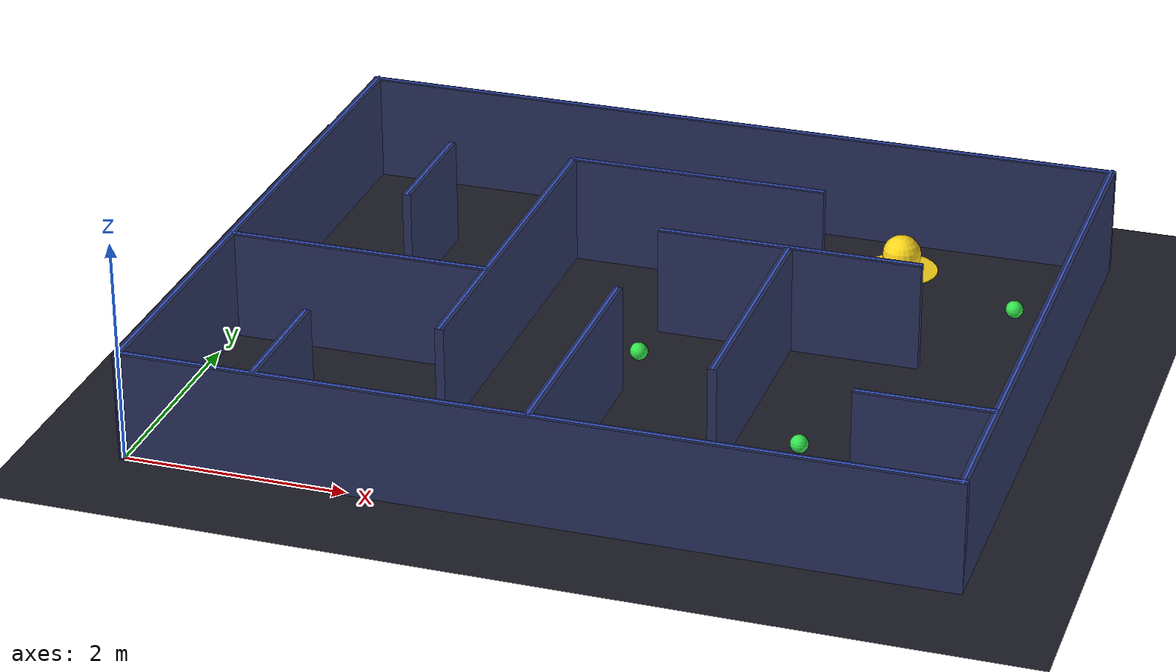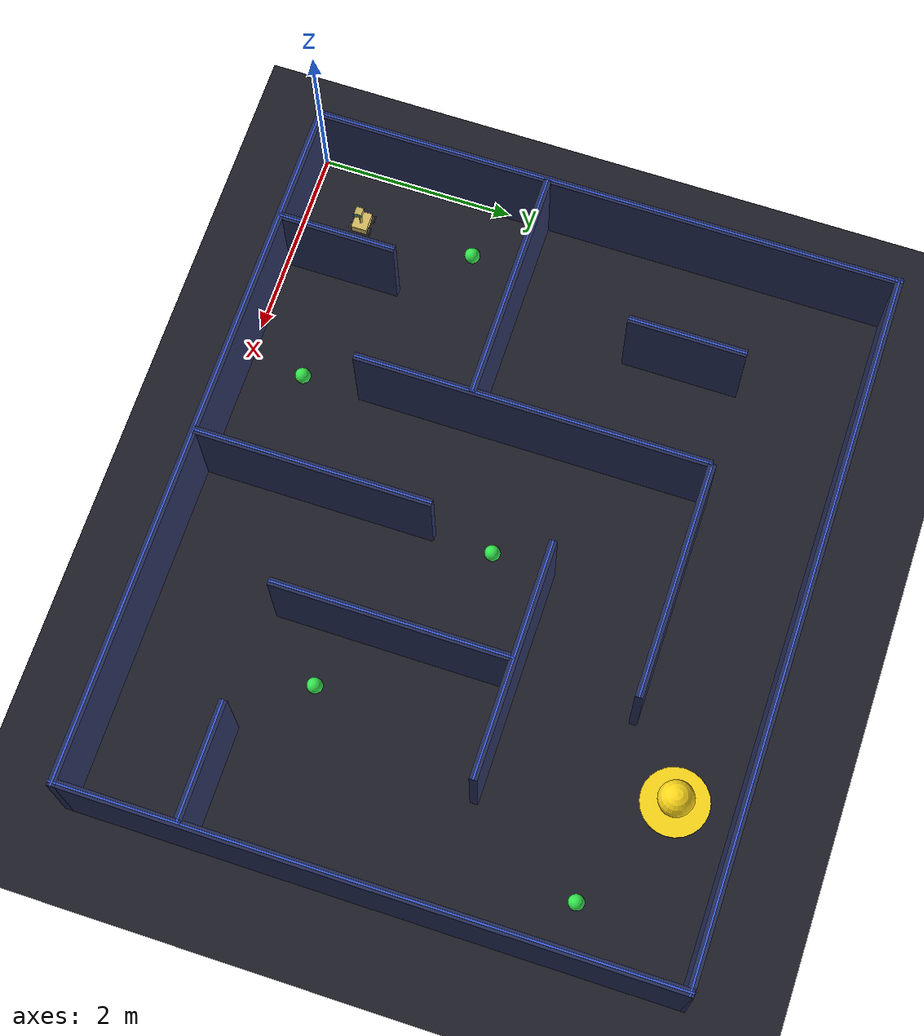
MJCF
<?xml version="1.0" encoding="utf-8"?>
<mujoco model="CARL Genesis">

  <option timestep="0.00417" gravity="0 0 -9.81" iterations="50" solver="Newton"
          integrator="RK4"/>

  <compiler angle="radian" coordinate="local" inertiafromgeom="true"/>

  <default>
    <geom contype="1" conaffinity="1" condim="3"
          friction="0.85 0.005 0.0001"
          solimp="0.99 0.999 0.001" solref="0.02 1"/>
    <joint damping="0.05" frictionloss="0.002"/>
  </default>

  <asset>
    <!-- Materials -->
    <material name="floor_mat"   rgba="0.12 0.12 0.16 1.0" reflectance="0.15"/>
    <material name="wall_mat"    rgba="0.15 0.18 0.35 1.0" specular="0.3"/>
    <material name="wall_glow"   rgba="0.30 0.45 1.00 0.8" emission="0.6"/>
    <material name="chassis_mat" rgba="0.85 0.75 0.40 1.0" specular="0.5"/>
    <material name="wheel_mat"   rgba="0.20 0.20 0.20 1.0" specular="0.1"/>
    <material name="neck_mat"    rgba="0.70 0.65 0.35 1.0"/>
    <material name="head_mat"    rgba="0.80 0.72 0.38 1.0" specular="0.4"/>
    <material name="eye_mat"     rgba="0.20 0.85 0.95 1.0" emission="0.8"/>
    <material name="food_mat"    rgba="0.20 0.90 0.30 1.0" emission="0.5"/>
    <material name="goal_mat"    rgba="1.00 0.85 0.10 1.0" emission="0.7"/>
    <material name="hub_mat"     rgba="0.70 0.70 0.70 1.0" specular="0.8"/>

    <!-- Sky -->
    <texture name="sky" type="skybox" builtin="gradient"
             rgb1="0.05 0.05 0.12" rgb2="0.02 0.02 0.06" width="512" height="512"/>
  </asset>

  <visual>
    <headlight ambient="0.35 0.35 0.45" diffuse="0.6 0.6 0.7" specular="0.1 0.1 0.1"/>
    <rgba haze="0.02 0.02 0.04 1"/>
    <quality shadowsize="2048"/>
  </visual>

  <worldbody>
    <!-- Floor -->
    <geom name="floor" type="plane" size="15 15 0.1"
          pos="3.6 3.0 0" material="floor_mat" condim="3"/>

    <!-- Ambient light -->
    <light name="sun" pos="3.6 3.0 8.0" dir="0 0 -1"
           diffuse="0.5 0.5 0.6" specular="0.2 0.2 0.2" castshadow="true"/>

    <!-- MAZE WALLS (same verified layout as Phase 18)                     -->

    <!-- Outer boundary -->
    <geom name="w_s" type="box" size="3.64 0.04 0.50" pos="3.6  0.0  0.50" material="wall_mat"/>
    <geom name="w_n" type="box" size="3.64 0.04 0.50" pos="3.6  6.0  0.50" material="wall_mat"/>
    <geom name="w_w" type="box" size="0.04 3.04 0.50" pos="0.0  3.0  0.50" material="wall_mat"/>
    <geom name="w_e" type="box" size="0.04 3.04 0.50" pos="7.2  3.0  0.50" material="wall_mat"/>

    <!-- Glow caps on outer walls -->
    <geom name="wg_s" type="box" size="3.64 0.01 0.004" pos="3.6  0.0  1.004" material="wall_glow" contype="0" conaffinity="0"/>
    <geom name="wg_n" type="box" size="3.64 0.01 0.004" pos="3.6  6.0  1.004" material="wall_glow" contype="0" conaffinity="0"/>
    <geom name="wg_w" type="box" size="0.01 3.04 0.004" pos="0.0  3.0  1.004" material="wall_glow" contype="0" conaffinity="0"/>
    <geom name="wg_e" type="box" size="0.01 3.04 0.004" pos="7.2  3.0  1.004" material="wall_glow" contype="0" conaffinity="0"/>

    <!-- Internal walls -->
    <geom name="wi0" type="box" size="0.04 0.60 0.50" pos="1.2 0.6  0.50" material="wall_mat"/>
    <geom name="wi1" type="box" size="1.20 0.04 0.50" pos="1.2 2.4  0.50" material="wall_mat"/>
    <geom name="wi2" type="box" size="0.04 0.60 0.50" pos="1.2 4.2  0.50" material="wall_mat"/>
    <geom name="wi3" type="box" size="0.04 1.80 0.50" pos="2.4 3.0  0.50" material="wall_mat"/>
    <geom name="wi4" type="box" size="0.04 1.20 0.50" pos="3.6 1.2  0.50" material="wall_mat"/>
    <geom name="wi5" type="box" size="1.20 0.04 0.50" pos="3.6 4.8  0.50" material="wall_mat"/>
    <geom name="wi6" type="box" size="0.04 1.20 0.50" pos="4.8 2.4  0.50" material="wall_mat"/>
    <geom name="wi7" type="box" size="1.20 0.04 0.50" pos="4.8 3.6  0.50" material="wall_mat"/>
    <geom name="wi8" type="box" size="0.60 0.04 0.50" pos="6.6 1.2  0.50" material="wall_mat"/>

    <!-- Internal glow caps -->
    <geom name="wgi0" type="box" size="0.01 0.60 0.004" pos="1.2 0.6  1.004" material="wall_glow" contype="0" conaffinity="0"/>
    <geom name="wgi1" type="box" size="1.20 0.01 0.004" pos="1.2 2.4  1.004" material="wall_glow" contype="0" conaffinity="0"/>
    <geom name="wgi2" type="box" size="0.01 0.60 0.004" pos="1.2 4.2  1.004" material="wall_glow" contype="0" conaffinity="0"/>
    <geom name="wgi3" type="box" size="0.01 1.80 0.004" pos="2.4 3.0  1.004" material="wall_glow" contype="0" conaffinity="0"/>
    <geom name="wgi4" type="box" size="0.01 1.20 0.004" pos="3.6 1.2  1.004" material="wall_glow" contype="0" conaffinity="0"/>
    <geom name="wgi5" type="box" size="1.20 0.01 0.004" pos="3.6 4.8  1.004" material="wall_glow" contype="0" conaffinity="0"/>
    <geom name="wgi6" type="box" size="0.01 1.20 0.004" pos="4.8 2.4  1.004" material="wall_glow" contype="0" conaffinity="0"/>
    <geom name="wgi7" type="box" size="1.20 0.01 0.004" pos="4.8 3.6  1.004" material="wall_glow" contype="0" conaffinity="0"/>
    <geom name="wgi8" type="box" size="0.60 0.01 0.004" pos="6.6 1.2  1.004" material="wall_glow" contype="0" conaffinity="0"/>

    <!-- GOAL BEACON                                                        -->
    <geom name="goal_sphere" type="sphere"   size="0.18"      pos="5.4 5.4 0.18"
          material="goal_mat" contype="0" conaffinity="0"/>
    <geom name="goal_ring"   type="cylinder" size="0.34 0.005" pos="5.4 5.4 0.02"
          material="goal_mat" contype="0" conaffinity="0"/>
    <light name="goal_light" pos="5.4 5.4 1.5" dir="0 0 -1"
           diffuse="0.8 0.7 0.1" specular="0.3 0.3 0.1" castshadow="false"/>

    <!-- FOOD PELLETS — 5 scattered sources of energy                      -->
    <!-- Positions chosen to be in different maze regions                  -->
    <geom name="food_0" type="sphere" size="0.08" pos="0.6 1.8 0.08"
          material="food_mat" contype="0" conaffinity="0"/>
    <geom name="food_1" type="sphere" size="0.08" pos="2.4 0.6 0.08"
          material="food_mat" contype="0" conaffinity="0"/>
    <geom name="food_2" type="sphere" size="0.08" pos="3.6 3.0 0.08"
          material="food_mat" contype="0" conaffinity="0"/>
    <geom name="food_3" type="sphere" size="0.08" pos="5.4 1.8 0.08"
          material="food_mat" contype="0" conaffinity="0"/>
    <geom name="food_4" type="sphere" size="0.08" pos="6.6 4.8 0.08"
          material="food_mat" contype="0" conaffinity="0"/>

    <!-- CARL-A — The first living vessel                                   -->
    <!-- Wall-E style: wide low stable base, expressive neck and head      -->
    <body name="base_A" pos="0.60 0.60 0.10">
      <freejoint name="fj_A"/>

      <!-- Main chassis: wide, low, stable. Center of mass near the ground. -->
      <geom name="chassis_A" type="box" size="0.10 0.08 0.045"
            material="chassis_mat" mass="1.2"
            friction="0.15 0.005 0.0001"/>
      <inertial pos="0 0 0" mass="1.2" fullinertia="0.003 0.004 0.005 0 0 0"/>

      <!-- Left Front Wheel -->
      <body name="lfw_A" pos=" 0.07  0.10  -0.02">
        <joint name="lfw_A_j" type="hinge" axis="0 1 0" damping="0.015" frictionloss="0.003"/>
        <geom name="lfw_A_g" type="cylinder" size="0.04 0.012"
              euler="1.5708 0 0" material="wheel_mat" mass="0.15"
              friction="1.5 0.005 0.0001"/>
      </body>

      <!-- Left Rear Wheel -->
      <body name="lrw_A" pos="-0.07  0.10  -0.02">
        <joint name="lrw_A_j" type="hinge" axis="0 1 0" damping="0.015" frictionloss="0.003"/>
        <geom name="lrw_A_g" type="cylinder" size="0.04 0.012"
              euler="1.5708 0 0" material="wheel_mat" mass="0.15"
              friction="1.5 0.005 0.0001"/>
      </body>

      <!-- Right Front Wheel -->
      <body name="rfw_A" pos=" 0.07 -0.10  -0.02">
        <joint name="rfw_A_j" type="hinge" axis="0 1 0" damping="0.015" frictionloss="0.003"/>
        <geom name="rfw_A_g" type="cylinder" size="0.04 0.012"
              euler="1.5708 0 0" material="wheel_mat" mass="0.15"
              friction="1.5 0.005 0.0001"/>
      </body>

      <!-- Right Rear Wheel -->
      <body name="rrw_A" pos="-0.07 -0.10  -0.02">
        <joint name="rrw_A_j" type="hinge" axis="0 1 0" damping="0.015" frictionloss="0.003"/>
        <geom name="rrw_A_g" type="cylinder" size="0.04 0.012"
              euler="1.5708 0 0" material="wheel_mat" mass="0.15"
              friction="1.5 0.005 0.0001"/>
      </body>

      <!-- Neck column: prismatic (height) + hinge (pan) -->
      <!-- This translates internal emotional state into visible posture -->
      <body name="neck_col_A" pos="0.02 0 0.045">
        <!-- Prismatic: neck rises and falls with curiosity, fear, grief -->
        <joint name="neck_lift_A" type="slide" axis="0 0 1"
               range="0.0 0.28" damping="15.0" stiffness="30.0" springref="0.12"/>
        <geom name="neck_tube_A" type="cylinder" size="0.014 0.10"
              pos="0 0 0.10" material="neck_mat" mass="0.08"
              contype="0" conaffinity="0"/>

        <!-- Head pan body -->
        <body name="neck_top_A" pos="0 0 0.22">
          <!-- Pan: head turns toward threats and novelty -->
          <joint name="head_pan_A" type="hinge" axis="0 0 1"
                 range="-1.047 1.047" damping="0.1" stiffness="0.0" springref="0.0"/>

          <!-- Head box -->
          <body name="head_A" pos="0.02 0 0.025">
            <geom name="head_box_A" type="box" size="0.042 0.038 0.032"
                  material="head_mat" mass="0.25"
                  contype="0" conaffinity="0"/>
            <inertial pos="0 0 0" mass="0.25" fullinertia="0.0003 0.0003 0.0003 0 0 0"/>

            <!-- Eyes: the windows of CARL's soul -->
            <geom name="eye_L_A" type="sphere" size="0.013" pos="0.041  0.018  0.005"
                  material="eye_mat" contype="0" conaffinity="0" mass="0"/>
            <geom name="eye_R_A" type="sphere" size="0.013" pos="0.041 -0.018  0.005"
                  material="eye_mat" contype="0" conaffinity="0" mass="0"/>
            <!-- Eye glow rings -->
            <geom name="eye_ring_L_A" type="cylinder" size="0.015 0.001"
                  pos="0.042  0.018  0.005" euler="0 1.5708 0"
                  material="eye_mat" contype="0" conaffinity="0" mass="0"/>
            <geom name="eye_ring_R_A" type="cylinder" size="0.015 0.001"
                  pos="0.042 -0.018  0.005" euler="0 1.5708 0"
                  material="eye_mat" contype="0" conaffinity="0" mass="0"/>
          </body>
        </body>
      </body>
    </body>

    <!-- CARL-B — The second living vessel                                  -->
    <!-- Same genetics, different position, will develop differently       -->
    <body name="base_B" pos="0.90 0.60 0.10">
      <freejoint name="fj_B"/>

      <geom name="chassis_B" type="box" size="0.10 0.08 0.045"
            material="chassis_mat" mass="1.2"
            friction="0.15 0.005 0.0001"/>
      <inertial pos="0 0 0" mass="1.2" fullinertia="0.003 0.004 0.005 0 0 0"/>

      <body name="lfw_B" pos=" 0.07  0.10  -0.02">
        <joint name="lfw_B_j" type="hinge" axis="0 1 0" damping="0.015" frictionloss="0.003"/>
        <geom name="lfw_B_g" type="cylinder" size="0.04 0.012"
              euler="1.5708 0 0" material="wheel_mat" mass="0.15"
              friction="1.5 0.005 0.0001"/>
      </body>

      <body name="lrw_B" pos="-0.07  0.10  -0.02">
        <joint name="lrw_B_j" type="hinge" axis="0 1 0" damping="0.015" frictionloss="0.003"/>
        <geom name="lrw_B_g" type="cylinder" size="0.04 0.012"
              euler="1.5708 0 0" material="wheel_mat" mass="0.15"
              friction="1.5 0.005 0.0001"/>
      </body>

      <body name="rfw_B" pos=" 0.07 -0.10  -0.02">
        <joint name="rfw_B_j" type="hinge" axis="0 1 0" damping="0.015" frictionloss="0.003"/>
        <geom name="rfw_B_g" type="cylinder" size="0.04 0.012"
              euler="1.5708 0 0" material="wheel_mat" mass="0.15"
              friction="1.5 0.005 0.0001"/>
      </body>

      <body name="rrw_B" pos="-0.07 -0.10  -0.02">
        <joint name="rrw_B_j" type="hinge" axis="0 1 0" damping="0.015" frictionloss="0.003"/>
        <geom name="rrw_B_g" type="cylinder" size="0.04 0.012"
              euler="1.5708 0 0" material="wheel_mat" mass="0.15"
              friction="1.5 0.005 0.0001"/>
      </body>

      <body name="neck_col_B" pos="0.02 0 0.045">
        <joint name="neck_lift_B" type="slide" axis="0 0 1"
               range="0.0 0.28" damping="15.0" stiffness="30.0" springref="0.12"/>
        <geom name="neck_tube_B" type="cylinder" size="0.014 0.10"
              pos="0 0 0.10" material="neck_mat" mass="0.08"
              contype="0" conaffinity="0"/>

        <body name="neck_top_B" pos="0 0 0.22">
          <joint name="head_pan_B" type="hinge" axis="0 0 1"
                 range="-1.047 1.047" damping="0.1" stiffness="0.0" springref="0.0"/>

          <body name="head_B" pos="0.02 0 0.025">
            <geom name="head_box_B" type="box" size="0.042 0.038 0.032"
                  material="head_mat" mass="0.25"
                  contype="0" conaffinity="0"/>
            <inertial pos="0 0 0" mass="0.25" fullinertia="0.0003 0.0003 0.0003 0 0 0"/>

            <geom name="eye_L_B" type="sphere" size="0.013" pos="0.041  0.018  0.005"
                  material="eye_mat" contype="0" conaffinity="0" mass="0"/>
            <geom name="eye_R_B" type="sphere" size="0.013" pos="0.041 -0.018  0.005"
                  material="eye_mat" contype="0" conaffinity="0" mass="0"/>
            <geom name="eye_ring_L_B" type="cylinder" size="0.015 0.001"
                  pos="0.042  0.018  0.005" euler="0 1.5708 0"
                  material="eye_mat" contype="0" conaffinity="0" mass="0"/>
            <geom name="eye_ring_R_B" type="cylinder" size="0.015 0.001"
                  pos="0.042 -0.018  0.005" euler="0 1.5708 0"
                  material="eye_mat" contype="0" conaffinity="0" mass="0"/>
          </body>
        </body>
      </body>
    </body>

  </worldbody>

  <!-- ACTUATORS                                                            -->
  <actuator>
    <!-- CARL-A wheels: velocity control -->
    <velocity name="lw_A"    joint="lfw_A_j" kv="0.5" forcerange="-0.5 0.5" gear="1"/>
    <velocity name="lw_A_r"  joint="lrw_A_j" kv="0.5" forcerange="-0.5 0.5" gear="1"/>
    <velocity name="rw_A"    joint="rfw_A_j" kv="0.5" forcerange="-0.5 0.5" gear="1"/>
    <velocity name="rw_A_r"  joint="rrw_A_j" kv="0.5" forcerange="-0.5 0.5" gear="1"/>

    <!-- CARL-A neck/head: position control -->
    <position name="neck_A"  joint="neck_lift_A" kp="5.0" gear="1"/>
    <position name="pan_A"   joint="head_pan_A"  kp="5.0" gear="1"/>

    <!-- CARL-B wheels: velocity control -->
    <velocity name="lw_B"    joint="lfw_B_j" kv="0.5" forcerange="-0.5 0.5" gear="1"/>
    <velocity name="lw_B_r"  joint="lrw_B_j" kv="0.5" forcerange="-0.5 0.5" gear="1"/>
    <velocity name="rw_B"    joint="rfw_B_j" kv="0.5" forcerange="-0.5 0.5" gear="1"/>
    <velocity name="rw_B_r"  joint="rrw_B_j" kv="0.5" forcerange="-0.5 0.5" gear="1"/>

    <!-- CARL-B neck/head: position control -->
    <position name="neck_B"  joint="neck_lift_B" kp="5.0" gear="1"/>
    <position name="pan_B"   joint="head_pan_B"  kp="5.0" gear="1"/>
  </actuator>

</mujoco>
